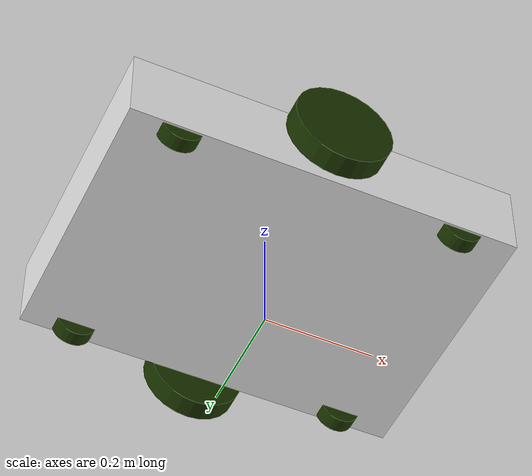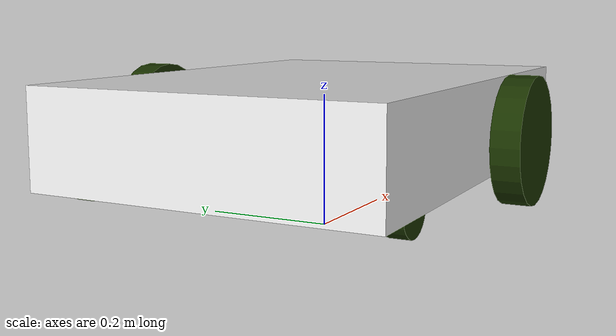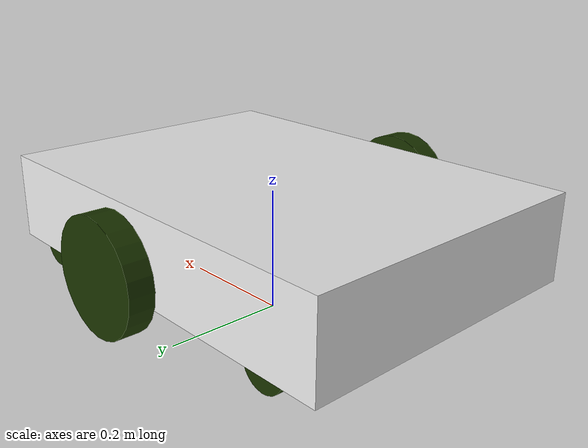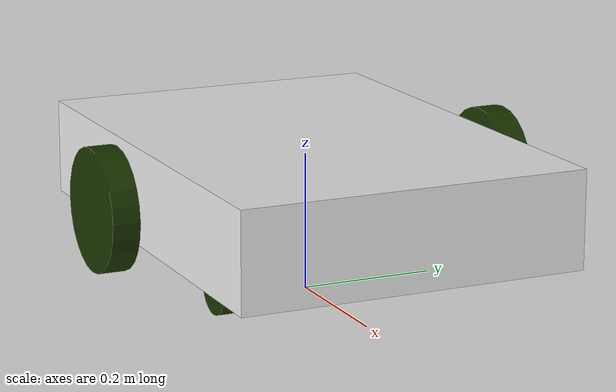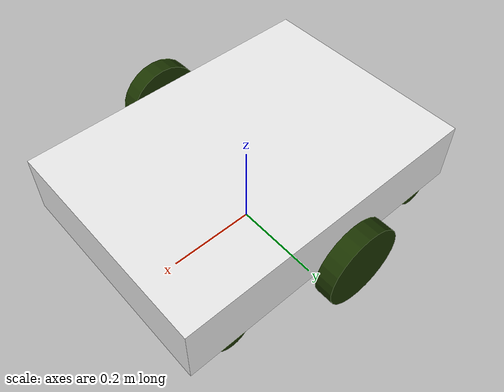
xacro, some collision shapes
<?xml version="1.0"?>
<robot name="AMR_Platform"
  xmlns:xacro="http://www.ros.org/wiki/xacro">
  <!-- COLOURS -->
  <material name="amr_body_color">
    <color rgba="0.5 0.4 0.9 1.0"/>
  </material>

  <material name="amr_wheel_color">
    <color rgba="0.1 0.2 0.0 1.0"/>
  </material>

  <!-- BASE LINK -->
  <link name="base_link">
    <static>true</static>
  </link>

  <!-- MAIN BODY COMPOSED OF 3 ABSTRACT BOXES -->
  <link name="amr_main_body">

    <visual>
      <origin rpy="0 0 3.1415926535897" xyz="0 0 -0.085"/>
      <geometry>
        <mesh filename="file://$(find moma_visualisation)/meshes/LD250.obj"/>
      </geometry>
      <material name="white"/>
    </visual>

    <collision>
      <origin rpy="0 0 0" xyz="0 0 0.01"/>
      <geometry>
        <box size="0.7 0.5 0.14 "/>
      </geometry>
    </collision>
    <collision>
      <origin rpy="0 0 0" xyz="-0.125 0 0.11"/>
      <geometry>
        <box size="0.45 0.5 0.05 "/>
      </geometry>
    </collision>
    <collision>
      <origin rpy="0 0 0" xyz="0 0 0.21"/>
      <geometry>
        <box size="0.7 0.5 0.14 "/>
      </geometry>
    </collision>

    <inertial>
      <mass value="10000.07"/>
      <origin rpy="0 0 0" xyz="-0.03 0 0"/>
      <inertia ixx="0.426" ixy="0.0" ixz="0.0" iyy="0.496" iyz="0.0" izz="0.91"/>
    </inertial>

  </link>

  <joint name="main_body_to_base" type="fixed">
    <parent link="base_link"/>
    <child link="amr_main_body"/>
    <origin xyz="0 0 0.15"/>
  </joint>
  <link name="left_wheel">
    <visual>
      <origin rpy="1.5707963267949 0 0" xyz="0 0 0"/>
      <geometry>
        <cylinder length="0.03937" radius="0.088"/>
      </geometry>
      <material name="amr_wheel_color"/>
    </visual>
    <collision>
      <origin rpy="1.5707963267949 0 0" xyz="0 0 0"/>
      <geometry>
        <cylinder length="0.03937" radius="0.088"/>
      </geometry>
    </collision>
    <inertial>
      <mass value="0.17"/>
      <inertia ixx="0.000204" ixy="0.0" ixz="0.0" iyy="0.000306" iyz="0.0" izz="0.000204"/>
    </inertial>
  </link>
  <joint name="left_wheel_joint" type="continuous">
    <axis rpy="0 0 0" xyz="0 1 0"/>
    <parent link="amr_main_body"/>
    <child link="left_wheel"/>
    <origin rpy="0 0 0" xyz="-0.004 0.3025 0.000881"/>
  </joint>
  <link name="right_wheel">
    <visual>
      <origin rpy="1.5707963267949 0 0" xyz="0 0 0"/>
      <geometry>
        <cylinder length="0.03937" radius="0.088"/>
      </geometry>
      <material name="amr_wheel_color"/>
    </visual>
    <collision>
      <origin rpy="1.5707963267949 0 0" xyz="0 0 0"/>
      <geometry>
        <cylinder length="0.03937" radius="0.088"/>
      </geometry>
    </collision>
    <inertial>
      <mass value="0.17"/>
      <inertia ixx="0.000204" ixy="0.0" ixz="0.0" iyy="0.000306" iyz="0.0" izz="0.000204"/>
    </inertial>
  </link>
  <joint name="right_wheel_joint" type="continuous">
    <axis rpy="0 0 0" xyz="0 1 0"/>
    <parent link="amr_main_body"/>
    <child link="right_wheel"/>
    <origin rpy="0 0 0" xyz="-0.004 -0.3025 0.000881"/>
  </joint>

  <link name="right_front_small_wheel">
    <visual>
      <origin rpy="1.5707963267949 0 0" xyz="0 0 0"/>
      <geometry>
        <cylinder length="0.02775" radius="0.03625"/>
      </geometry>
      <material name="amr_wheel_color"/>
    </visual>
    <collision>
      <origin rpy="1.5707963267949 0 0" xyz="0 0 0"/>
      <geometry>
        <cylinder length="0.02775" radius="0.03625"/>
      </geometry>
    </collision>
    <inertial>
      <mass value="0.17"/>
      <inertia ixx="0.000204" ixy="0.0" ixz="0.0" iyy="0.000306" iyz="0.0" izz="0.000204"/>
    </inertial>
  </link>
  <joint name="right_front_small_wheel_joint" type="continuous">
    <axis rpy="0 0 0" xyz="0 1 0"/>
    <parent link="amr_main_body"/>
    <child link="right_front_small_wheel"/>
    <origin rpy="0 0 0" xyz="0.2493 -0.2325 -0.049"/>
  </joint>
  <link name="left_front_small_wheel">
    <visual>
      <origin rpy="1.5707963267949 0 0" xyz="0 0 0"/>
      <geometry>
        <cylinder length="0.02775" radius="0.03625"/>
      </geometry>
      <material name="amr_wheel_color"/>
    </visual>
    <collision>
      <origin rpy="1.5707963267949 0 0" xyz="0 0 0"/>
      <geometry>
        <cylinder length="0.02775" radius="0.03625"/>
      </geometry>
    </collision>
    <inertial>
      <mass value="0.17"/>
      <inertia ixx="0.000204" ixy="0.0" ixz="0.0" iyy="0.000306" iyz="0.0" izz="0.000204"/>
    </inertial>
  </link>
  <joint name="left_front_small_wheel_joint" type="continuous">
    <axis rpy="0 0 0" xyz="0 1 0"/>
    <parent link="amr_main_body"/>
    <child link="left_front_small_wheel"/>
    <origin rpy="0 0 0" xyz="0.2493 0.2325 -0.049"/>
  </joint>
  <link name="left_back_small_wheel">
    <visual>
      <origin rpy="1.5707963267949 0 0" xyz="0 0 0"/>
      <geometry>
        <cylinder length="0.02775" radius="0.03625"/>
      </geometry>
      <material name="amr_wheel_color"/>
    </visual>
    <collision>
      <origin rpy="1.5707963267949 0 0" xyz="0 0 0"/>
      <geometry>
        <cylinder length="0.02775" radius="0.03625"/>
      </geometry>
    </collision>
    <inertial>
      <mass value="0.17"/>
      <inertia ixx="0.000204" ixy="0.0" ixz="0.0" iyy="0.000306" iyz="0.0" izz="0.000204"/>
    </inertial>
  </link>
  <joint name="left_back_small_wheel_joint" type="continuous">
    <axis rpy="0 0 0" xyz="0 1 0"/>
    <parent link="amr_main_body"/>
    <child link="left_back_small_wheel"/>
    <origin rpy="0 0 0" xyz="-0.257 0.2325 -0.049"/>
  </joint>
  <link name="right_back_small_wheel">
    <visual>
      <origin rpy="1.5707963267949 0 0" xyz="0 0 0"/>
      <geometry>
        <cylinder length="0.02775" radius="0.03625"/>
      </geometry>
      <material name="amr_wheel_color"/>
    </visual>
    <collision>
      <origin rpy="1.5707963267949 0 0" xyz="0 0 0"/>
      <geometry>
        <cylinder length="0.02775" radius="0.03625"/>
      </geometry>
    </collision>
    <inertial>
      <mass value="0.17"/>
      <inertia ixx="0.000204" ixy="0.0" ixz="0.0" iyy="0.000306" iyz="0.0" izz="0.000204"/>
    </inertial>
  </link>
  <joint name="right_back_small_wheel_joint" type="continuous">
    <axis rpy="0 0 0" xyz="0 1 0"/>
    <parent link="amr_main_body"/>
    <child link="right_back_small_wheel"/>
    <origin rpy="0 0 0" xyz="-0.257 -0.2325 -0.049"/>
  </joint>

</robot>
